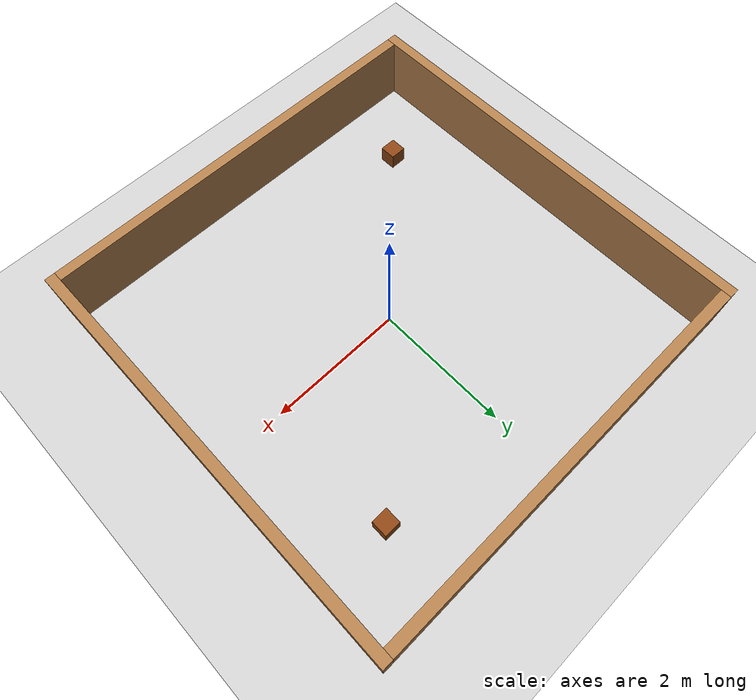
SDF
<sdf version='1.4'>
  <world name='default'>
    <!-- A global light source -->
    <include>
      <uri>model://sun</uri>
    </include>

    <!-- A ground plane -->
    <include>
      <uri>model://ground_plane</uri>
    </include>

    <physics type="ode">
      <real_time_update_rate>1000.0</real_time_update_rate>
      <max_step_size>0.001</max_step_size>
      <real_time_factor>1</real_time_factor>
      <ode>
        <solver>
          <type>quick</type>
          <iters>150</iters>
          <precon_iters>0</precon_iters>
          <sor>1.400000</sor>
          <use_dynamic_moi_rescaling>1</use_dynamic_moi_rescaling>
        </solver>
        <constraints>
          <cfm>0.00001</cfm>
          <erp>0.2</erp>
          <contact_max_correcting_vel>2000.000000</contact_max_correcting_vel>
          <contact_surface_layer>0.01000</contact_surface_layer>
        </constraints>
      </ode>
    </physics>

    <model name='world_1'>
      <pose frame=''>0 0 0 0 -0 0</pose>
      <link name='Wall_1'>
        <collision name='Wall_1_Collision'>
          <geometry>
            <box>
              <size>6 0.15 1</size>
            </box>
          </geometry>
          <pose frame=''>0 0 0.5 0 -0 0</pose>
        </collision>
        <visual name='Wall_1_Visual'>
          <pose frame=''>0 0 0.5 0 -0 0</pose>
          <geometry>
            <box>
              <size>6 0.15 1</size>
            </box>
          </geometry>
          <material>
            <script>
              <uri>file://media/materials/scripts/gazebo.material</uri>
              <name>Gazebo/WoodPallet</name>
            </script>
            <ambient>1 1 1 1</ambient>
          </material>
        </visual>
        <pose frame=''>0 3.075 0 0 -0 0</pose>
      </link>
      <link name='Wall_2'>
        <collision name='Wall_2_Collision'>
          <geometry>
            <box>
              <size>6.3 0.15 1</size>
            </box>
          </geometry>
          <pose frame=''>0 0 0.5 0 -0 0</pose>
        </collision>
        <visual name='Wall_2_Visual'>
          <pose frame=''>0 0 0.5 0 -0 0</pose>
          <geometry>
            <box>
              <size>6.3 0.15 1</size>
            </box>
          </geometry>
          <material>
            <script>
              <uri>file://media/materials/scripts/gazebo.material</uri>
              <name>Gazebo/WoodPallet</name>
            </script>
            <ambient>1 1 1 1</ambient>
          </material>
        </visual>
        <pose frame=''>-3.075 0 0 0 0 -1.5708</pose>
      </link>
      <link name='Wall_3'>
        <collision name='Wall_3_Collision'>
          <geometry>
            <box>
              <size>6 0.15 1</size>
            </box>
          </geometry>
          <pose frame=''>0 0 0.5 0 -0 0</pose>
        </collision>
        <visual name='Wall_3_Visual'>
          <pose frame=''>0 0 0.5 0 -0 0</pose>
          <geometry>
            <box>
              <size>6 0.15 1</size>
            </box>
          </geometry>
          <material>
            <script>
              <uri>file://media/materials/scripts/gazebo.material</uri>
              <name>Gazebo/WoodPallet</name>
            </script>
            <ambient>1 1 1 1</ambient>
          </material>
        </visual>
        <pose frame=''>0 -3.075 0 0 -0 0</pose>
      </link>
      <link name='Wall_4'>
        <collision name='Wall_4_Collision'>Pallet
          <geometry>
            <box>
              <size>6.3 0.15 1</size>
            </box>
          </geometry>
          <pose frame=''>0 0 0.5 0 -0 0</pose>
        </collision>
        <visual name='Wall_4_Visual'>
          <pose frame=''>0 0 0.5 0 -0 0</pose>
          <geometry>
            <box>
              <size>6.3 0.15 1</size>
            </box>
          </geometry>
          <material>
            <script>
              <uri>file://media/materials/scripts/gazebo.material</uri>
              <name>Gazebo/WoodPallet</name>
            </script>
            <ambient>1 1 1 1</ambient>
          </material>
        </visual>
        <pose frame=''>3.075 0 0 0 -0 1.5708</pose>
      </link>
      <static>1</static>
    </model>

    <model name="obstacle_1">
      <pose>2 2 0 0 0 0</pose>
      <link name="link">

        <visual name="visual">
          <geometry>
            <box>
              <size>0.24 0.24 0.5</size>
            </box>
          </geometry>
        <material>
          <script>
            <uri>file://media/materials/scripts/gazebo.material</uri>
            <name>Gazebo/Grey</name>
          </script>
          <ambient>0.543 0.27 0.074 1</ambient>
        </material>
        </visual>

        <collision name="collision">
          <geometry>
            <box>
              <size>0.24 0.24 0.5</size>
            </box>
          </geometry>
        </collision>

      </link>
    <static>0</static>
    </model>

    <model name="obstacle_2">
      <pose>-2 -2 0 0 0 0</pose>
      <link name="link">

        <visual name="visual">
          <geometry>
            <box>
              <size>0.24 0.24 0.5</size>
            </box>
          </geometry>
        <material>
          <script>
            <uri>file://media/materials/scripts/gazebo.material</uri>
            <name>Gazebo/Grey</name>
          </script>
          <ambient>0.543 0.27 0.074 1</ambient>
        </material>
        </visual>

        <collision name="collision">
          <geometry>
            <box>
              <size>0.24 0.24 0.5</size>
            </box>
          </geometry>
        </collision>

      </link>
      <plugin name="obstacle_2" filename="libobstacle_2.so"/>
    <static>0</static>
    </model>

    <scene>
      <ambient>0.4 0.4 0.4 1</ambient>
      <background>0.7 0.7 0.7 1</background>
      <shadows>true</shadows>
    </scene>

    <gui fullscreen='0'>
      <camera name='user_camera'>
        <pose>0.0 0.0 17.0 0 1.5708 0</pose>
        <view_controller>orbit</view_controller>
      </camera>
    </gui>
  </world>
</sdf>
